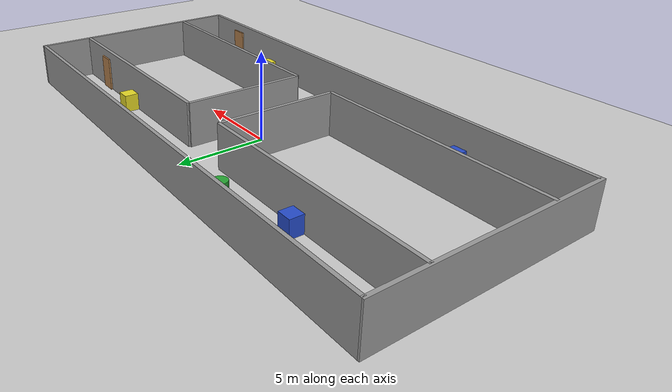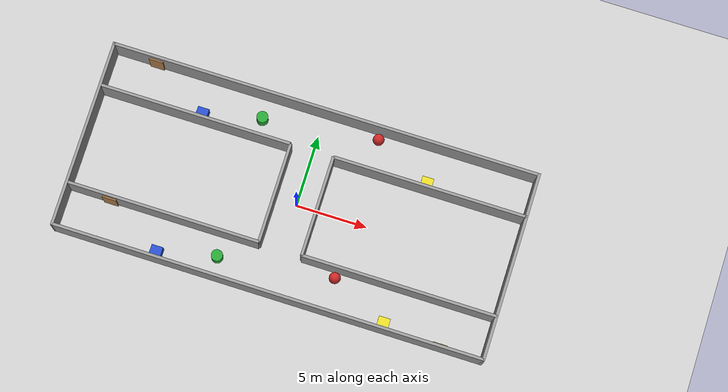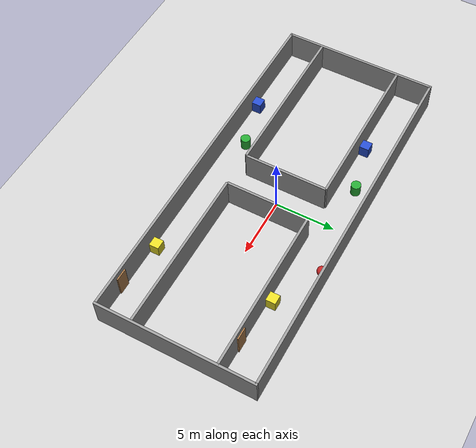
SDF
<?xml version="1.0" ?>
<sdf version="1.7">
  <world name="perfect_symmetric_world">

    <include><uri>model://sun</uri></include>
    <include><uri>model://ground_plane</uri></include>

    <!-- KHUNG HÀNH LANG CHỮ "H" (Không thay đổi)     -->
    <model name="h_shape_corridors">
      <static>true</static>
      <link name="walls">
        <!-- HÀNH LANG BẮC (Tâm Y = 5.0, Khoảng trống từ Y=3.6 đến Y=6.4) -->
        <collision name="top_north"><pose>0 6.5 1.25 0 0 0</pose><geometry><box><size>30 0.2 2.5</size></box></geometry></collision>
        <visual name="top_north_v"><pose>0 6.5 1.25 0 0 0</pose><geometry><box><size>30 0.2 2.5</size></box></geometry><material><script><uri>file://media/materials/scripts/gazebo.material</uri><name>Gazebo/Grey</name></script></material></visual>

        <collision name="top_south_l"><pose>-8.25 3.5 1.25 0 0 0</pose><geometry><box><size>13.5 0.2 2.5</size></box></geometry></collision>
        <visual name="top_south_l_v"><pose>-8.25 3.5 1.25 0 0 0</pose><geometry><box><size>13.5 0.2 2.5</size></box></geometry><material><script><uri>file://media/materials/scripts/gazebo.material</uri><name>Gazebo/Grey</name></script></material></visual>

        <collision name="top_south_r"><pose>8.25 3.5 1.25 0 0 0</pose><geometry><box><size>13.5 0.2 2.5</size></box></geometry></collision>
        <visual name="top_south_r_v"><pose>8.25 3.5 1.25 0 0 0</pose><geometry><box><size>13.5 0.2 2.5</size></box></geometry><material><script><uri>file://media/materials/scripts/gazebo.material</uri><name>Gazebo/Grey</name></script></material></visual>

        <!-- HÀNH LANG NAM (Tâm Y = -5.0, Khoảng trống từ Y=-6.4 đến Y=-3.6) -->
        <collision name="bot_north_l"><pose>-8.25 -3.5 1.25 0 0 0</pose><geometry><box><size>13.5 0.2 2.5</size></box></geometry></collision>
        <visual name="bot_north_l_v"><pose>-8.25 -3.5 1.25 0 0 0</pose><geometry><box><size>13.5 0.2 2.5</size></box></geometry><material><script><uri>file://media/materials/scripts/gazebo.material</uri><name>Gazebo/Grey</name></script></material></visual>

        <collision name="bot_north_r"><pose>8.25 -3.5 1.25 0 0 0</pose><geometry><box><size>13.5 0.2 2.5</size></box></geometry></collision>
        <visual name="bot_north_r_v"><pose>8.25 -3.5 1.25 0 0 0</pose><geometry><box><size>13.5 0.2 2.5</size></box></geometry><material><script><uri>file://media/materials/scripts/gazebo.material</uri><name>Gazebo/Grey</name></script></material></visual>

        <collision name="bot_south"><pose>0 -6.5 1.25 0 0 0</pose><geometry><box><size>30 0.2 2.5</size></box></geometry></collision>
        <visual name="bot_south_v"><pose>0 -6.5 1.25 0 0 0</pose><geometry><box><size>30 0.2 2.5</size></box></geometry><material><script><uri>file://media/materials/scripts/gazebo.material</uri><name>Gazebo/Grey</name></script></material></visual>

        <!-- BỨC TƯỜNG CHẮN 2 ĐẦU VÀ ĐƯỜNG HẦM -->
        <collision name="far_west"><pose>-15 0 1.25 0 0 0</pose><geometry><box><size>0.2 13.2 2.5</size></box></geometry></collision>
        <visual name="far_west_v"><pose>-15 0 1.25 0 0 0</pose><geometry><box><size>0.2 13.2 2.5</size></box></geometry><material><script><uri>file://media/materials/scripts/gazebo.material</uri><name>Gazebo/Grey</name></script></material></visual>

        <collision name="far_east"><pose>15 0 1.25 0 0 0</pose><geometry><box><size>0.2 13.2 2.5</size></box></geometry></collision>
        <visual name="far_east_v"><pose>15 0 1.25 0 0 0</pose><geometry><box><size>0.2 13.2 2.5</size></box></geometry><material><script><uri>file://media/materials/scripts/gazebo.material</uri><name>Gazebo/Grey</name></script></material></visual>

        <collision name="tunnel_west"><pose>-1.5 0 1.25 0 0 0</pose><geometry><box><size>0.2 7 2.5</size></box></geometry></collision>
        <visual name="tunnel_west_v"><pose>-1.5 0 1.25 0 0 0</pose><geometry><box><size>0.2 7 2.5</size></box></geometry><material><script><uri>file://media/materials/scripts/gazebo.material</uri><name>Gazebo/Grey</name></script></material></visual>

        <collision name="tunnel_east"><pose>1.5 0 1.25 0 0 0</pose><geometry><box><size>0.2 7 2.5</size></box></geometry></collision>
        <visual name="tunnel_east_v"><pose>1.5 0 1.25 0 0 0</pose><geometry><box><size>0.2 7 2.5</size></box></geometry><material><script><uri>file://media/materials/scripts/gazebo.material</uri><name>Gazebo/Grey</name></script></material></visual>
      </link>
    </model>

    <!-- ĐẶC TRƯNG GÂY NHIỄU (ĐÃ FIX LỖI TỌA ĐỘ)        -->
    <model name="identical_features">
      <static>true</static>
      <link name="features">

        <!-- ================= HÀNH LANG BẮC (TOP) ================= -->
        <!-- Tâm Y = 5.0. Bên trái: Y = 6.0, Bên phải: Y = 4.0 -->

        <!-- Mốc -12m: Cửa gỗ áp sát tường bên trái -->
        <visual name="t_door1"><pose>-12 6.35 1.0 0 0 0</pose><geometry><box><size>1.0 0.1 2.0</size></box></geometry><material><script><uri>file://media/materials/scripts/gazebo.material</uri><name>Gazebo/Wood</name></script></material></visual>
        <collision name="tc_door1"><pose>-12 6.35 1.0 0 0 0</pose><geometry><box><size>1.0 0.1 2.0</size></box></geometry></collision>

        <!-- Mốc -8m: Hộp xanh dương nằm sát bên phải -->
        <visual name="t_box1"><pose>-8 4.0 0.5 0 0 0</pose><geometry><box><size>0.8 0.8 1.0</size></box></geometry><material><script><uri>file://media/materials/scripts/gazebo.material</uri><name>Gazebo/Blue</name></script></material></visual>
        <collision name="tc_box1"><pose>-8 4.0 0.5 0 0 0</pose><geometry><box><size>0.8 0.8 1.0</size></box></geometry></collision>

        <!-- Mốc -4m: Trụ xanh lá nằm chính giữa lối đi -->
        <visual name="t_cyl1"><pose>-4 5.0 0.5 0 0 0</pose><geometry><cylinder><radius>0.4</radius><length>1.0</length></cylinder></geometry><material><script><uri>file://media/materials/scripts/gazebo.material</uri><name>Gazebo/Green</name></script></material></visual>
        <collision name="tc_cyl1"><pose>-4 5.0 0.5 0 0 0</pose><geometry><cylinder><radius>0.4</radius><length>1.0</length></cylinder></geometry></collision>

        <!-- === Qua khỏi đường hầm === -->

        <!-- Mốc +4m: Khối cầu đỏ nằm sát bên trái -->
        <visual name="t_sph1"><pose>4 6.0 0.4 0 0 0</pose><geometry><sphere><radius>0.4</radius></sphere></geometry><material><script><uri>file://media/materials/scripts/gazebo.material</uri><name>Gazebo/Red</name></script></material></visual>
        <collision name="tc_sph1"><pose>4 6.0 0.4 0 0 0</pose><geometry><sphere><radius>0.4</radius></sphere></geometry></collision>

        <!-- Mốc +8m: Hộp màu vàng nằm sát bên phải -->
        <visual name="t_box2"><pose>8 4.0 0.5 0 0 0</pose><geometry><box><size>0.8 0.8 1.0</size></box></geometry><material><script><uri>file://media/materials/scripts/gazebo.material</uri><name>Gazebo/Yellow</name></script></material></visual>
        <collision name="tc_box2"><pose>8 4.0 0.5 0 0 0</pose><geometry><box><size>0.8 0.8 1.0</size></box></geometry></collision>

        <!-- Mốc +12m: Cửa gỗ áp sát tường bên phải -->
        <visual name="t_door2"><pose>12 3.65 1.0 0 0 0</pose><geometry><box><size>1.0 0.1 2.0</size></box></geometry><material><script><uri>file://media/materials/scripts/gazebo.material</uri><name>Gazebo/Wood</name></script></material></visual>
        <collision name="tc_door2"><pose>12 3.65 1.0 0 0 0</pose><geometry><box><size>1.0 0.1 2.0</size></box></geometry></collision>

        <!-- ================= HÀNH LANG NAM (BOTTOM) ================= -->
        <!-- Tâm Y = -5.0. Bên trái: Y = -4.0, Bên phải: Y = -6.0 -->

        <!-- Mốc -12m: Cửa gỗ áp sát tường bên trái -->
        <visual name="b_door1"><pose>-12 -3.65 1.0 0 0 0</pose><geometry><box><size>1.0 0.1 2.0</size></box></geometry><material><script><uri>file://media/materials/scripts/gazebo.material</uri><name>Gazebo/Wood</name></script></material></visual>
        <collision name="bc_door1"><pose>-12 -3.65 1.0 0 0 0</pose><geometry><box><size>1.0 0.1 2.0</size></box></geometry></collision>

        <!-- Mốc -8m: Hộp xanh dương nằm sát bên phải -->
        <visual name="b_box1"><pose>-8 -6.0 0.5 0 0 0</pose><geometry><box><size>0.8 0.8 1.0</size></box></geometry><material><script><uri>file://media/materials/scripts/gazebo.material</uri><name>Gazebo/Blue</name></script></material></visual>
        <collision name="bc_box1"><pose>-8 -6.0 0.5 0 0 0</pose><geometry><box><size>0.8 0.8 1.0</size></box></geometry></collision>

        <!-- Mốc -4m: Trụ xanh lá nằm chính giữa lối đi -->
        <visual name="b_cyl1"><pose>-4 -5.0 0.5 0 0 0</pose><geometry><cylinder><radius>0.4</radius><length>1.0</length></cylinder></geometry><material><script><uri>file://media/materials/scripts/gazebo.material</uri><name>Gazebo/Green</name></script></material></visual>
        <collision name="bc_cyl1"><pose>-4 -5.0 0.5 0 0 0</pose><geometry><cylinder><radius>0.4</radius><length>1.0</length></cylinder></geometry></collision>

        <!-- === Qua khỏi đường hầm === -->

        <!-- Mốc +4m: Khối cầu đỏ nằm sát bên trái -->
        <visual name="b_sph1"><pose>4 -4.0 0.4 0 0 0</pose><geometry><sphere><radius>0.4</radius></sphere></geometry><material><script><uri>file://media/materials/scripts/gazebo.material</uri><name>Gazebo/Red</name></script></material></visual>
        <collision name="bc_sph1"><pose>4 -4.0 0.4 0 0 0</pose><geometry><sphere><radius>0.4</radius></sphere></geometry></collision>

        <!-- Mốc +8m: Hộp màu vàng nằm sát bên phải -->
        <visual name="b_box2"><pose>8 -6.0 0.5 0 0 0</pose><geometry><box><size>0.8 0.8 1.0</size></box></geometry><material><script><uri>file://media/materials/scripts/gazebo.material</uri><name>Gazebo/Yellow</name></script></material></visual>
        <collision name="bc_box2"><pose>8 -6.0 0.5 0 0 0</pose><geometry><box><size>0.8 0.8 1.0</size></box></geometry></collision>

        <!-- Mốc +12m: Cửa gỗ áp sát tường bên phải -->
        <visual name="b_door2"><pose>12 -6.35 1.0 0 0 0</pose><geometry><box><size>1.0 0.1 2.0</size></box></geometry><material><script><uri>file://media/materials/scripts/gazebo.material</uri><name>Gazebo/Wood</name></script></material></visual>
        <collision name="bc_door2"><pose>12 -6.35 1.0 0 0 0</pose><geometry><box><size>1.0 0.1 2.0</size></box></geometry></collision>

      </link>
    </model>

  </world>
</sdf>
